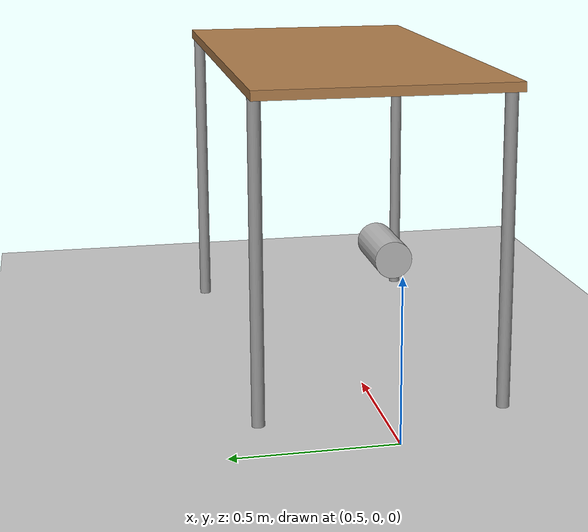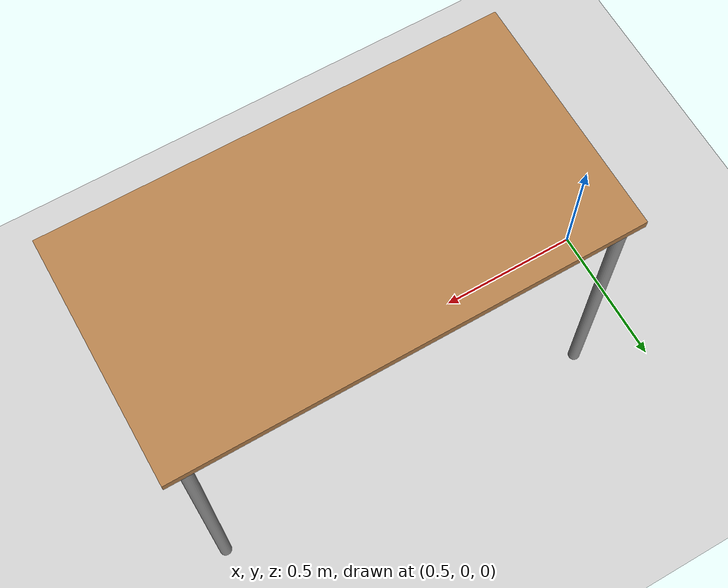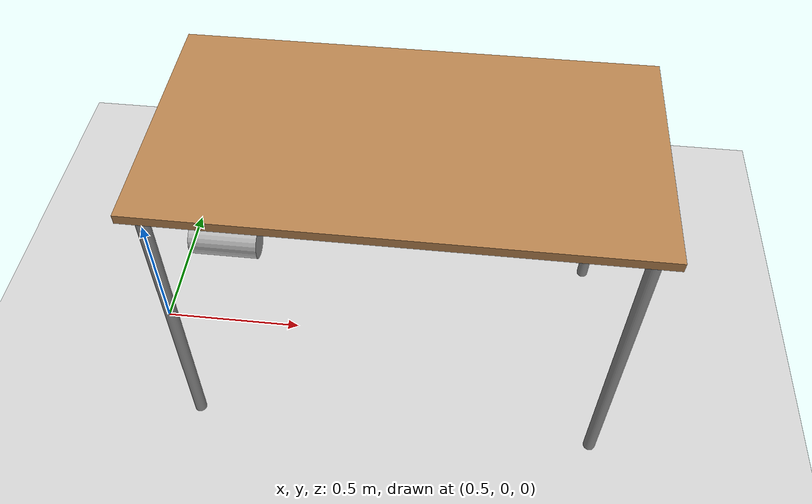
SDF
<?xml version="1.0" ?>
<sdf version="1.4">
	<world name="thin_beer_setup">
		<!-- A global light source -->
		<include>
			<uri>model://sun</uri>
		</include>
		<!-- A ground plane -->
		<include>
			<uri>model://ground_plane</uri>
		</include>
		<!-- A table to hold things -->
		<include>
			<uri>model://low_table</uri>
			<name>low_table</name>
			<pose>1.4 0 0 0 0 0</pose>
		</include>
		<!-- A table to hold things -->
		<include>
			<uri>model://thin_beer</uri>
			<name>thin_beer_3</name>
			<pose>0.681194 -0.019517 0.498000 0 1.57 0</pose>
		</include>

		<!-- Shadows disabled -->
		<scene>
			<shadows>0</shadows>
		</scene>

		<!-- Camera position -->
		<gui>
			<camera name="camera1">
				<pose>2.6319 -1.80076 1.48357 0 0.292 2.4</pose>
			</camera>
		</gui>
	</world>
</sdf>

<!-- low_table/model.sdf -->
<sdf version="1.5">
  <model name="low_table">
    <static>true</static>
    <link name="link">
      <collision name="surface">
        <pose>0 0 1.0 0 0 0</pose>
        <geometry>
          <box>
            <size>1.5 0.8 0.03</size>
          </box>
        </geometry>
        <surface>
          <friction>
            <ode>
              <mu>0.6</mu>
              <mu2>0.6</mu2>
            </ode>
          </friction>
        </surface>
      </collision>
      <visual name="visual1">
        <pose>0 0 1.0 0 0 0</pose>
        <geometry>
          <box>
            <size>1.5 0.8 0.03</size>
          </box>
        </geometry>
        <material>
          <script>
            <uri>file://media/materials/scripts/gazebo.material</uri>
            <name>Gazebo/Wood</name>
          </script>
        </material>
      </visual>
      <collision name="front_left_leg">
        <pose>0.68 0.38 0.5 0 0 0</pose>
        <geometry>
          <cylinder>
            <radius>0.02</radius>
            <length>1.0</length>
          </cylinder>
        </geometry>
      </collision>
      <visual name="front_left_leg">
        <pose>0.68 0.38 0.5 0 0 0</pose>
        <geometry>
          <cylinder>
            <radius>0.02</radius>
            <length>1.0</length>
          </cylinder>
        </geometry>
        <material>
          <script>
            <uri>file://media/materials/scripts/gazebo.material</uri>
            <name>Gazebo/Grey</name>
          </script>
        </material>
      </visual>
      <collision name="front_right_leg">
        <pose>0.68 -0.38 0.5 0 0 0</pose>
        <geometry>
          <cylinder>
            <radius>0.02</radius>
            <length>1.0</length>
          </cylinder>
        </geometry>
      </collision>
      <visual name="front_right_leg">
        <pose>0.68 -0.38 0.5 0 0 0</pose>
        <geometry>
          <cylinder>
            <radius>0.02</radius>
            <length>1.0</length>
          </cylinder>
        </geometry>
        <material>
          <script>
            <uri>file://media/materials/scripts/gazebo.material</uri>
            <name>Gazebo/Grey</name>
          </script>
        </material>
      </visual>
      <collision name="back_right_leg">
        <pose>-0.68 -0.38 0.5 0 0 0</pose>
        <geometry>
          <cylinder>
            <radius>0.02</radius>
            <length>1.0</length>
          </cylinder>
        </geometry>
      </collision>
      <visual name="back_right_leg">
        <pose>-0.68 -0.38 0.5 0 0 0</pose>
        <geometry>
          <cylinder>
            <radius>0.02</radius>
            <length>1.0</length>
          </cylinder>
        </geometry>
        <material>
          <script>
            <uri>file://media/materials/scripts/gazebo.material</uri>
            <name>Gazebo/Grey</name>
          </script>
        </material>
      </visual>
      <collision name="back_left_leg">
        <pose>-0.68 0.38 0.5 0 0 0</pose>
        <geometry>
          <cylinder>
            <radius>0.02</radius>
            <length>1.0</length>
          </cylinder>
        </geometry>
      </collision>
      <visual name="back_left_leg">
        <pose>-0.68 0.38 0.5 0 0 0</pose>
        <geometry>
          <cylinder>
            <radius>0.02</radius>
            <length>1.0</length>
          </cylinder>
        </geometry>
        <material>
          <script>
            <uri>file://media/materials/scripts/gazebo.material</uri>
            <name>Gazebo/Grey</name>
          </script>
        </material>
      </visual>
    </link>
  </model>
</sdf>

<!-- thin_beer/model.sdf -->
<sdf version="1.5">
  <model name="thin beer">
    <link name="link">
      <pose>0 0 0.115 0 0 0</pose>
      <inertial>
        <mass>0.390</mass>
        <inertia>
          <ixx>0.00058</ixx>
          <ixy>0</ixy>
          <ixz>0</ixz>
          <iyy>0.00058</iyy>
          <iyz>0</iyz>
          <izz>0.00019</izz>
        </inertia>
      </inertial>
      <collision name="collision">
        <geometry>
          <cylinder>
            <radius>0.055000</radius>
            <length>0.230000</length>
          </cylinder>
        </geometry>
      </collision>
      <visual name="visual">
        <geometry>
          <cylinder>
            <radius>0.055000</radius>
            <length>0.230000</length>
          </cylinder>
        </geometry>
        <material>
          <script>
            <uri>model://beer/materials/scripts</uri>
            <uri>model://beer/materials/textures</uri>
            <name>Beer/Diffuse</name>
          </script>
        </material>
      </visual>
    </link>
  </model>
</sdf>
